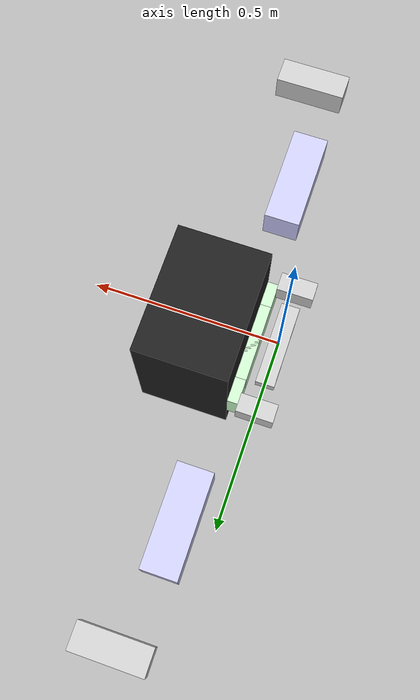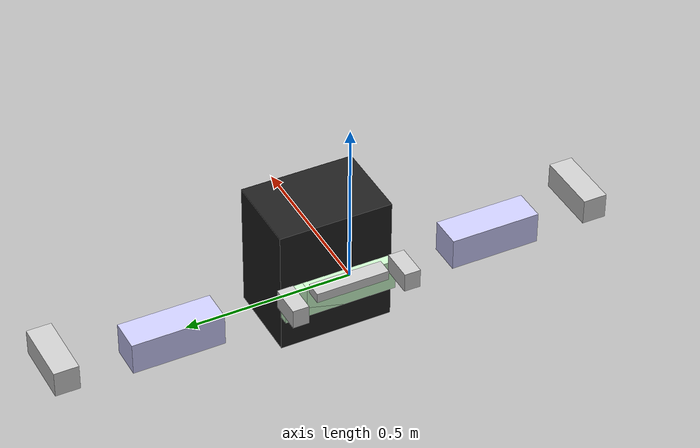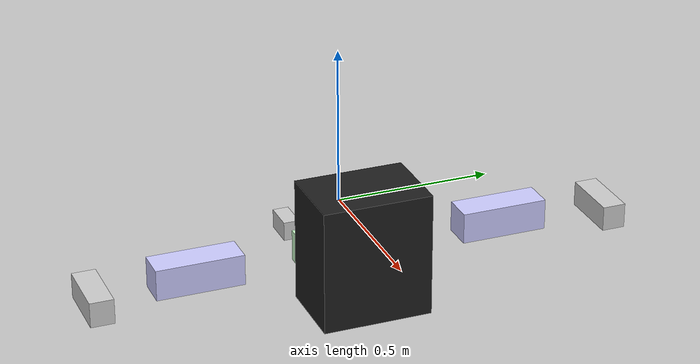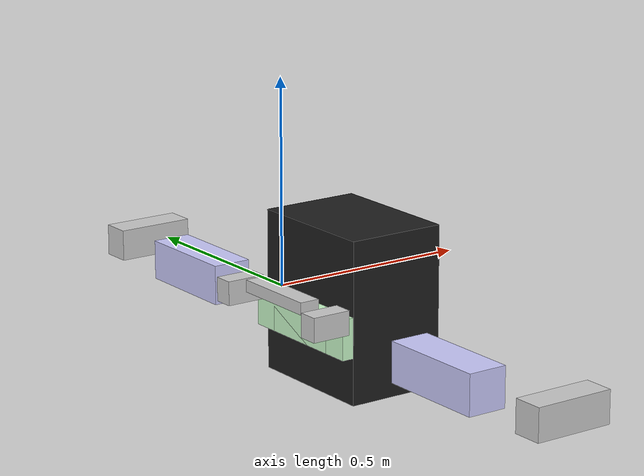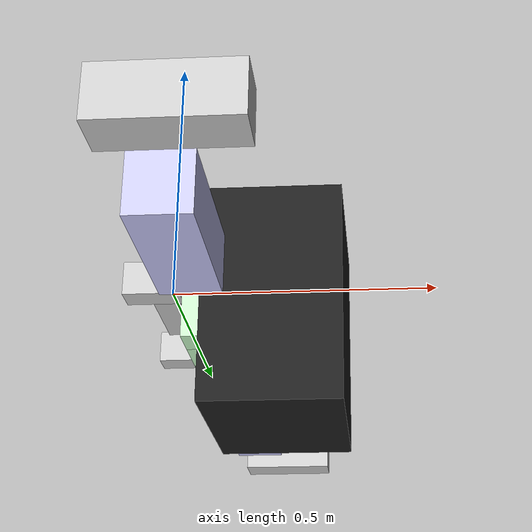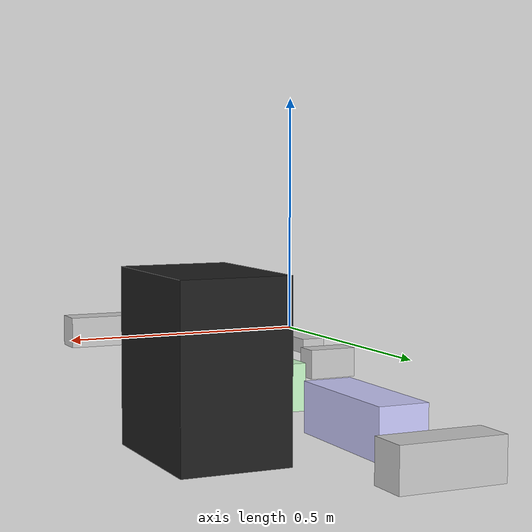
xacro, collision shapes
<?xml version="1.0"?>
<robot name="lower_limb_exoskeleton" xmlns:xacro="http://www.ros.org/wiki/xacro">

  <xacro:include filename="properties.xacro" />
  <xacro:include filename="macros.xacro" />
  <xacro:include filename="human_dummy.xacro" />

  <link name="world"/>

  <joint name="pole_to_waist" type="fixed">
    <parent link="world" />
    <child link="waist_link" />
    <origin xyz="0 0 0  " />
  </joint>

  <link name="human_waist_link">
    <visual>
      <origin xyz="0 0 ${-human_waist_h/2}" rpy="0 0 0" />
      <geometry>
        <box size="${human_waist_l} ${human_waist_w} ${human_waist_h}" />
      </geometry>
      <material name="black" />
    </visual>
    <collision>
      <origin xyz="0 0 ${-human_waist_h/2}" rpy="0 0 0" />
      <geometry>
        <box size="${human_waist_l} ${human_waist_w} ${human_waist_h}" />
      </geometry>
    </collision>

    <inertial>
      <origin xyz="0 0 ${-human_waist_h/2}" rpy="0 0 0" />
      <mass value="${human_waist_weight}" />
      <inertia
        ixx="${human_waist_weight / 12.0 * (human_waist_w**2 + human_waist_h**2)}"
        iyy="${human_waist_weight / 12.0 * (human_waist_l**2 + human_waist_h**2)}"
        izz="${human_waist_weight / 12.0 * (human_waist_l**2 + human_waist_w**2)}"
        ixy="0"
        ixz="0"
        iyz="0" />
    </inertial>

  </link>

  <joint name="human_waist_link_joint" type="fixed">
    <parent link="waist_link" />
    <child link="human_waist_link" />
    <origin xyz="${human_waist_l/2 + 0.08} 0 ${human_waist_h/3}" rpy="0 0 0" />
  </joint>
  <xacro:create_link3 name="waist_link" m="${waist_m}" l="${waist_l}" w="${waist_w/2}"
    h="${waist_h}" o_x="0" o_y="${waist_mesh_w/2 -0.015}" o_z="${-waist_h_offset}" o_r="0"
    o_p="${-PI}"
    o_yaw="${-PI}" mat="${waist_mat}" mesh_filename="${waist_mesh}" mirror="1" />

  <xacro:create_link3 name="l_pel_link" m="${pel_m}" l="${pel_l}" w="${pel_w}"
    h="${pel_h}" o_x="${pel_x_offset}" o_y="${pel_y_offset}"
    o_z="${-pel_h_offset}" o_r="0" o_p="0"
    o_yaw="0" mat="${pel_mat}" mesh_filename="${pel_mesh}" mirror="1" />
  <xacro:create_link3 name="l_thigh_link" m="${thigh_m}" l="${thigh_l}" w="${thigh_w}"
    h="${thigh_h}" o_x="${thigh_w}" o_y="${thigh_w/2}" o_z="${-thigh_l}" o_r="0" o_p="0"
    o_yaw="${PI}" mat="${thigh_mat}" mesh_filename="${thigh_mesh}" mirror="1" />
  <xacro:create_link3 name="l_shank_link" m="${shank_m}" l="${shank_l}" w="${shank_w}"
    h="${shank_h}" o_x="${shank_w}" o_y="${shank_w/2}" o_z="${-shank_l}" o_r="0" o_p="0"
    o_yaw="${PI}"
    mat="${shank_mat}" mesh_filename="${shank_mesh}" mirror="1" />

    <link name="l_foot_link">
      <collision>
        <origin xyz="${foot_h/2} 0 ${-foot_h}" rpy="0 0 0" />
        <geometry>
            <box size="${foot_h*2} ${foot_w} ${foot_l/2}" />
        </geometry>

      </collision>
      <visual>
              <origin xyz="${-foot_h} ${foot_w} ${-foot_l}" rpy="${PI/2} 0 ${PI/2 + 0}" />

          <geometry>
          <mesh filename="${foot_mesh}"
                      scale="${-1*mesh_scale} ${mesh_scale} ${mesh_scale}" />

          </geometry>
          <origin xyz="0 0 ${-foot_h/2}" rpy="0 0 0" />
          <material name="${foot_mat}" />
      </visual>
      <inertial>
          <origin xyz="0 0 ${-foot_h/2}" rpy="0 0 0" />
          <mass value="${foot_m}" />
          <inertia
              ixx="${foot_m / 12.0 * (foot_w*foot_w + foot_h*foot_h)}"
              ixy="0.0" ixz="0.0"
              iyy="${foot_m / 12.0 * (foot_l*foot_l + foot_h*foot_h)}"
              iyz="0.0"
              izz="${foot_m / 12.0 * (foot_l*foot_l + foot_w*foot_w)}" />
      </inertial>
  </link>

  <xacro:create_link3 name="r_pel_link" m="${pel_m}" l="${pel_l}" w="${pel_w}"
    h="${pel_h}" o_x="${pel_x_offset}" o_y="${pel_y_offset}"
    o_z="${-pel_h_offset}" o_r="0" o_p="0"
    o_yaw="0" mat="${pel_mat}" mesh_filename="${pel_mesh}" mirror="1" />
  <xacro:create_link3 name="r_thigh_link" m="${thigh_m}" l="${thigh_l}" w="${thigh_w}"
    h="${thigh_h}" o_x="${-thigh_w}" o_y="${-thigh_w/2}" o_z="${-thigh_l}" o_r="0" o_p="0"
    o_yaw="0" mat="${thigh_mat}" mesh_filename="${thigh_mesh}" mirror="1" />
  <xacro:create_link3 name="r_shank_link" m="${shank_m}" l="${shank_l}" w="${shank_w}"
    h="${shank_h}" o_x="${-shank_w}" o_y="${-shank_w/2}" o_z="${-shank_l}" o_r="0" o_p="0" o_yaw="0"
    mat="${shank_mat}" mesh_filename="${shank_mesh}" mirror="1" />

    <link name="r_foot_link">
      <collision>
          <origin xyz="${foot_h/2} 0 ${-foot_h}" rpy="0 0 0" />
          <geometry>
              <box size="${foot_h*2} ${foot_w} ${foot_l/2}" />
          </geometry>

      </collision>
      <visual>
              <origin xyz="${-foot_h} ${-foot_w} ${-foot_l}" rpy="${PI/2} 0 ${PI/2 + 0}" />

          <geometry>
          <mesh filename="${foot_mesh}"
                      scale="${1*mesh_scale} ${mesh_scale} ${mesh_scale}" />

          </geometry>
          <origin xyz="0 0 ${-foot_h/2}" rpy="0 0 0" />
          <material name="${foot_mat}" />
      </visual>
      <inertial>
          <origin xyz="0 0 ${-foot_h/2}" rpy="0 0 0" />
          <mass value="${foot_m}" />
          <inertia
              ixx="${foot_m / 12.0 * (foot_w*foot_w + foot_h*foot_h)}"
              ixy="0.0" ixz="0.0"
              iyy="${foot_m / 12.0 * (foot_l*foot_l + foot_h*foot_h)}"
              iyz="0.0"
              izz="${foot_m / 12.0 * (foot_l*foot_l + foot_w*foot_w)}" />
      </inertial>
  </link>

  <!-- JOINTS                                                  -->
  <xacro:macro name="create_leg" params="side origin_y o_roll hip_y_offset">

    <xacro:if value="${side == 'l'}">
      <xacro:property name="pel_lower_limit" value="${-PI}" />
      <xacro:property name="pel_upper_limit" value="${-PI/4}" />
    </xacro:if>

    <xacro:if value="${side == 'r'}">
      <xacro:property name="pel_lower_limit" value="${PI/4}" />
      <xacro:property name="pel_upper_limit" value="${PI}" />
    </xacro:if>

    <xacro:create_joint2 name="yr_${side}_pel_joint" parent="waist_link"
      child="${side}_pel_link" origin_x="0" origin_y="${origin_y}"
      origin_z="0" o_roll="0"
      o_pitch="0" o_yaw="${-PI}"
      axis_x="1" axis_y="0" axis_z="0"
      lower_limit="${pel_lower_limit}" upper_limit="${pel_upper_limit}" effort="10000" velocity="10.0" />

    <xacro:create_joint2 name="yr_${side}_hip_joint" parent="${side}_pel_link"
      child="${side}_thigh_link"
      origin_x="${-pel_l}" origin_y="${hip_y_offset}" origin_z="${-pel_h}" o_roll="${o_roll}"
      o_pitch="0" o_yaw="${-PI}"
      axis_x="0" axis_y="1" axis_z="0"
      lower_limit="${3*PI/4}" upper_limit="${-3*PI/4}" effort="10000" velocity="10.0" />

    <xacro:create_joint2 name="yr_${side}_kne_joint" parent="${side}_thigh_link"
      child="${side}_shank_link"
      origin_x="0" origin_y="0" origin_z="${-thigh_l}" o_roll="0" o_pitch="0" o_yaw="0"
      axis_x="0" axis_y="1" axis_z="0"
      lower_limit="${-PI/4}" upper_limit="${3*PI/2}" effort="10000" velocity="10.0" />
    <xacro:create_joint2 name="yr_${side}_ank_joint" parent="${side}_shank_link"
      child="${side}_foot_link"
      origin_x="0" origin_y="0" origin_z="${-shank_l}" o_roll="0" o_pitch="0" o_yaw="0"
      axis_x="0" axis_y="1" axis_z="0"
      lower_limit="${-PI/2}" upper_limit="${PI/2}" effort="10000" velocity="10.0" />
  </xacro:macro>

  <xacro:create_leg side="l" origin_y="${(abduction_motor_distance) / 2}" o_roll="${-PI/2}"
    hip_y_offset="${-pel_w/2}" />
  <xacro:create_leg side="r" origin_y="${-(abduction_motor_distance) / 2}" o_roll="${PI/2}"
    hip_y_offset="${pel_w/2}" />

  <ros2_control name="GazeboSystem" type="system">

    <hardware>
      <plugin>gazebo_ros2_control/GazeboSystem</plugin>
    </hardware>
    <joint name="yr_l_pel_joint">
      <command_interface name="position">
        <param name="min">-3.14</param>
        <param name="max">3.14</param>
      </command_interface>
      <command_interface name="effort">
        <param name="min">-1000</param>
        <param name="max">1000</param>
      </command_interface>

      <state_interface name="position">
        <param name="initial_value">${yr_l_pel_joint_val}</param>
      </state_interface>
      <state_interface name="velocity" />
      <state_interface name="effort" />
    </joint>

    <joint name="yr_l_hip_joint">
      <command_interface name="position">
        <param name="min">-3.14</param>
        <param name="max">3.14</param>
      </command_interface>

      <command_interface name="effort">
        <param name="min">-1000</param>
        <param name="max">1000</param>
      </command_interface>

      <state_interface name="position">
        <param name="initial_value">${yr_l_hip_joint_val}</param>
      </state_interface>
      <state_interface name="velocity" />
      <state_interface name="effort" />
    </joint>

    <joint name="yr_l_kne_joint">
      <command_interface name="position">
        <param name="min">-3.14</param>
        <param name="max">3.14</param>
      </command_interface>
      <command_interface name="effort">
        <param name="min">-1000</param>
        <param name="max">1000</param>
      </command_interface>
      <state_interface name="position">
        <param name="initial_value">${yr_l_kne_joint_val}</param>
      </state_interface>
      <state_interface name="velocity" />
      <state_interface name="effort" />
    </joint>

    <joint name="yr_l_ank_joint">
      <command_interface name="position">
        <param name="min">-3.14</param>
        <param name="max">3.14</param>
      </command_interface>
      <command_interface name="effort">
        <param name="min">-1000</param>
        <param name="max">1000</param>
      </command_interface>
      <state_interface name="position">
        <param name="initial_value">${yr_l_ank_joint_val}</param>
      </state_interface>
      <state_interface name="velocity" />
      <state_interface name="effort" />
    </joint>

    <joint name="yr_r_pel_joint">
      <command_interface name="position">
        <param name="min">-3.14</param>
        <param name="max">3.14</param>
      </command_interface>
      <command_interface name="effort">
        <param name="min">-1000</param>
        <param name="max">1000</param>
      </command_interface>
      <state_interface name="position">
        <param name="initial_value">${yr_r_pel_joint_val}</param>
      </state_interface>
      <state_interface name="velocity" />
      <state_interface name="effort" />
    </joint>

    <joint name="yr_r_hip_joint">
      <command_interface name="position">
        <param name="min">-3.14</param>
        <param name="max">3.14</param>
      </command_interface>
      <command_interface name="effort">
        <param name="min">-1000</param>
        <param name="max">1000</param>
      </command_interface>
      <state_interface name="position">
        <param name="initial_value">${yr_r_hip_joint_val}</param>
      </state_interface>
      <state_interface name="velocity" />
      <state_interface name="effort" />
    </joint>

    <joint name="yr_r_kne_joint">
      <command_interface name="position">
        <param name="min">-3.14</param>
        <param name="max">3.14</param>
      </command_interface>
      <command_interface name="effort">
        <param name="min">-1000</param>
        <param name="max">1000</param>
      </command_interface>
      <state_interface name="position">
        <param name="initial_value">${yr_r_kne_joint_val}</param>
      </state_interface>
      <state_interface name="velocity" />
      <state_interface name="effort" />
    </joint>

    <joint name="yr_r_ank_joint">
      <command_interface name="position">
        <param name="min">-3.14</param>
        <param name="max">3.14</param>
      </command_interface>
      <command_interface name="effort">
        <param name="min">-1000</param>
        <param name="max">1000</param>
      </command_interface>
      <state_interface name="position">
        <param name="initial_value">${yr_r_ank_joint_val}</param>
      </state_interface>
      <state_interface name="velocity" />
      <state_interface name="effort" />
    </joint>

  </ros2_control>

  <gazebo>
    <plugin name="gazebo_ros2_control" filename="libgazebo_ros2_control.so">
      <parameters>$(find yr_lle_sim)/config/control.yaml</parameters>
    </plugin>
  </gazebo>

  <gazebo reference="l_pel_link">
    <plugin name="gazebo_ros_force_system" filename="libgazebo_ros_force_system.so">
      <!-- Add plugin-specific parameters here -->
    </plugin>
  </gazebo>

  <!-- Use the macro to add IMU sensors to specific links -->
  <xacro:add_imu_sensor link_name="l_pel_link" joint_name="yr_l_pel_joint" />
  <xacro:add_imu_sensor link_name="l_thigh_link" joint_name="yr_l_hip_joint" />
  <xacro:add_imu_sensor link_name="l_shank_link" joint_name="yr_l_kne_joint"/>
  <xacro:add_imu_sensor link_name="l_foot_link" joint_name="yr_l_ank_joint"/>

  <xacro:add_imu_sensor link_name="r_pel_link" joint_name="yr_r_pel_joint"/>
  <xacro:add_imu_sensor link_name="r_thigh_link" joint_name="yr_r_hip_joint"/>
  <xacro:add_imu_sensor link_name="r_shank_link" joint_name="yr_r_kne_joint"/>
  <xacro:add_imu_sensor link_name="r_foot_link" joint_name="yr_r_ank_joint"/>

</robot>

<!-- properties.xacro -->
<robot name="lower_limb_exoskeleton" xmlns:xacro="http://www.ros.org/wiki/xacro">

    <xacro:property name="PI" value="3.1415926535897931" />
    <xacro:property name="alpha" value="1.0" />

    <material name="silver">
        <color rgba="0.8 0.8 0.8 ${alpha}" />
    </material>

    <material name="blue">
        <color rgba="0.8 1 0.8 ${alpha}" />
    </material>

    <material name="green">
        <color rgba="0.8 0.8 1 ${alpha}" />
    </material>

    <xacro:property name="abduction_motor_distance" value="0.35" />

    <xacro:property name="waist_m" value="2.0" />
    <xacro:property name="waist_l" value="0.05" />
    <xacro:property name="waist_h" value="0.05" />
    <xacro:property name="waist_mat" value="silver" />
    <xacro:property name="waist_mesh_w" value="0.45" />
    <xacro:property name="waist_w" value="${waist_mesh_w}" />
    <xacro:property name="waist_h_offset" value="0.062" />
    <xacro:property name="pel_joints_dist" value="0.4" />
    <xacro:property name="waist_mesh"
        value="file://$(find yr_lle_sim)/urdf/meshes_yr/waist_center.STL" />

    <xacro:property name="pel_m" value="1.0" />
    <xacro:property name="pel_l" value="0.1" />
    <xacro:property name="pel_w" value="0.05" />
    <xacro:property name="pel_h" value="0.1" />
    <xacro:property name="pel_mat" value="silver" />
    <xacro:property name="pel_x_offset" value="-0.09" />
    <xacro:property name="pel_y_offset" value="-0.028" />
    <xacro:property name="pel_h_offset" value="0.088" />
    <xacro:property name="pel_mesh"
        value="file://$(find yr_lle_sim)/urdf/meshes_yr/waist_corner_bracket.STL" />

    <xacro:property name="thigh_m" value="1.5" />
    <xacro:property name="thigh_l" value="0.468" />
    <xacro:property name="thigh_w" value="0.1" />
    <xacro:property name="thigh_h" value="0.1" />
    <xacro:property name="thigh_mat" value="blue" />

    <xacro:property name="shank_m" value="1.5" />
    <xacro:property name="shank_l" value="0.468" />
    <xacro:property name="shank_w" value="0.1" />
    <xacro:property name="shank_h" value="0.1" />
    <xacro:property name="shank_mat" value="green" />

    <xacro:property name="foot_m" value="1.0" />
    <xacro:property name="foot_l" value="0.15" />
    <xacro:property name="foot_w" value="0.08" />
    <xacro:property name="foot_h" value="0.1" />
    <xacro:property name="foot_mat" value="silver" />

    <xacro:property name="stand_base_width" value="0.5" />
    <xacro:property name="stand_base_depth" value="0.5" />
    <xacro:property name="stand_base_height" value="0.05" />
    <xacro:property name="pole_height" value="1.2" />
    <xacro:property name="pole_radius" value="0.02" />

    <xacro:property name="thigh_mesh" value="file://$(find yr_lle_sim)/urdf/meshes_yr/exo_thigh.STL" />
    <xacro:property name="shank_mesh" value="file://$(find yr_lle_sim)/urdf/meshes_yr/exo_shank.STL" />
    <xacro:property name="foot_mesh" value="file://$(find yr_lle_sim)/urdf/meshes_yr/exo_foot.STL" />

    <!-- Human Boday Paramters -->

    <xacro:property name="human_thigh_r" value="0.075" />
    <xacro:property name="human_shank_r" value="0.056" />
    <xacro:property name="human_waist_l" value="0.25" />
    <xacro:property name="human_waist_w" value="0.35" />
    <xacro:property name="human_waist_h" value="0.4" />

    <xacro:property name="human_weight" value="75" />
    <xacro:property name="human_waist_weight" value="${human_weight*0.842}" />
    <xacro:property name="human_thigh_weight" value="${human_weight*0.1}" />
    <xacro:property name="human_shank_weight" value="${human_weight*0.05}" />
    <xacro:property name="human_foot_weight" value="${human_weight*0.015}" />

    <xacro:property name="yr_l_pel_joint_val" value="${-PI/2}" />
    <xacro:property name="yr_l_hip_joint_val" value="${-PI/4}" />
    <xacro:property name="yr_l_kne_joint_val" value="${PI/2}" />
    <xacro:property name="yr_l_ank_joint_val" value="${-PI/4}" />

    <xacro:property name="yr_r_pel_joint_val" value="${PI/2}" />
    <xacro:property name="yr_r_hip_joint_val" value="${-PI/4}" />
    <xacro:property name="yr_r_kne_joint_val" value="${PI/2}" />
    <xacro:property name="yr_r_ank_joint_val" value="${-PI/4}" />

</robot>

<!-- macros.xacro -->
<robot name="lower_limb_exoskeleton" xmlns:xacro="http://www.ros.org/wiki/xacro">

    <!-- LINK                                                    -->
    <xacro:macro name="create_link" params="name m l w h mat">
        <link name="${name}">
            <collision>
                <origin xyz="0 0 ${-l/2}" rpy="0 0 0" />
                <geometry>
                    <box size="${l} ${w} ${h}" />
                </geometry>
            </collision>
            <visual>
                <origin xyz="0 0 ${-l/2}" rpy="0 0 0" />
                <geometry>
                    <box size="${h} ${w} ${l}" />
                </geometry>
                <material name="${mat}" />
            </visual>
            <inertial>
                <origin xyz="0 0 ${-h/2}" rpy="0 0 0" />
                <mass value="${m}" />
                <inertia
                    ixx="${m / 12.0 * (w*w + l*l)}"
                    ixy="0.0" ixz="0.0"
                    iyy="${m / 12.0 * (h*h + l*l)}"
                    iyz="0.0"
                    izz="${m / 12.0 * (h*h + w*w)}" />
            </inertial>
        </link>
    </xacro:macro>

    <xacro:property name="mesh_scale" value="0.001" />
    <xacro:arg name="use_mesh" default="false" />

    <!-- LINK2                                                   -->
    <xacro:macro name="create_link2"
        params="name m l w h o_x o_y o_z o_r o_p o_yaw mat mesh_filename mirror">
        <link name="${name}">
            <collision>

                <xacro:if value="${mesh_filename != ''}">
                    <origin xyz="${o_x} ${o_y} ${o_z}" rpy="${PI/2} 0 ${PI/2 + o_yaw}" />
                </xacro:if>
                <xacro:unless value="${mesh_filename != ''}">
                    <origin xyz="0 0 ${-l/2}" rpy="0 0 ${-PI}" />
                </xacro:unless>
                <geometry>
                    <xacro:if value="${mesh_filename != ''}">
                        <mesh filename="${mesh_filename}"
                            scale="${mirror*mesh_scale} ${mesh_scale} ${mesh_scale}" />
                    </xacro:if>
                    <xacro:unless value="${mesh_filename != ''}">
                        <box size="${h} ${w} ${l}" />
                    </xacro:unless>
                </geometry>
                <origin xyz="0 0 ${-l/2}" rpy="0 0 0" />
                <material name="${mat}" />
            </collision>
            <visual>

                <xacro:if value="${mesh_filename != ''}">
                    <origin xyz="${o_x} ${o_y} ${o_z}" rpy="${PI/2} 0 ${PI/2 + o_yaw}" />
                </xacro:if>
                <xacro:unless value="${mesh_filename != ''}">
                    <origin xyz="0 0 ${-l/2}" rpy="0 0 ${-PI}" />
                </xacro:unless>
                <geometry>
                    <xacro:if value="${mesh_filename != ''}">
                        <mesh filename="${mesh_filename}"
                            scale="${mirror*mesh_scale} ${mesh_scale} ${mesh_scale}" />
                    </xacro:if>
                    <xacro:unless value="${mesh_filename != ''}">
                        <box size="${h} ${w} ${l}" />
                    </xacro:unless>
                </geometry>
                <origin xyz="0 0 ${-l/2}" rpy="0 0 0" />
                <material name="${mat}" />
            </visual>
            <inertial>
                <origin xyz="0 0 ${-l/2}" rpy="0 0 0" />
                <mass value="${m}" />
                <inertia
                    ixx="${m / 12.0 * (w*w + l*l)}"
                    ixy="0.0" ixz="0.0"
                    iyy="${m / 12.0 * (h*h + l*l)}"
                    iyz="0.0"
                    izz="${m / 12.0 * (h*h + w*w)}" />
            </inertial>
        </link>
    </xacro:macro>

    <xacro:macro name="create_link3"
        params="name m l w h o_x o_y o_z o_r o_p o_yaw mat mesh_filename mirror">
        <link name="${name}">
            <collision>
                <origin xyz="0 0 ${-l/2}" rpy="0 0 0" />
                <geometry>
                    <box size="${h} ${w} ${l*0.6}" />
                </geometry>

            </collision>
            <visual>

                <xacro:if value="${mesh_filename != ''}">
                    <origin xyz="${o_x} ${o_y} ${o_z}" rpy="${PI/2} 0 ${PI/2 + o_yaw}" />
                </xacro:if>
                <xacro:unless value="${mesh_filename != ''}">
                    <origin xyz="0 0 ${-l/2}" rpy="0 0 ${-PI}" />
                </xacro:unless>
                <geometry>
                    <xacro:if value="${mesh_filename != ''}">
                        <mesh filename="${mesh_filename}"
                            scale="${mirror*mesh_scale} ${mesh_scale} ${mesh_scale}" />
                    </xacro:if>
                    <xacro:unless value="${mesh_filename != ''}">
                        <box size="${h} ${w} ${l}" />
                    </xacro:unless>
                </geometry>
                <origin xyz="0 0 ${-l/2}" rpy="0 0 0" />
                <material name="${mat}" />
            </visual>
            <inertial>
                <origin xyz="0 0 ${-l/2}" rpy="0 0 0" />
                <mass value="${m}" />
                <inertia
                    ixx="${m / 12.0 * (w*w + l*l)}"
                    ixy="0.0" ixz="0.0"
                    iyy="${m / 12.0 * (h*h + l*l)}"
                    iyz="0.0"
                    izz="${m / 12.0 * (h*h + w*w)}" />
            </inertial>
        </link>
    </xacro:macro>

    <!-- JOINTS                                                  -->
    <xacro:macro name="create_joint"
        params="name parent child origin_x origin_y origin_z o_roll o_pitch o_yaw axis_x axis_y axis_z lower_limit upper_limit effort velocity">
        <joint name="${name}" type="revolute">
            <parent link="${parent}" />
            <child link="${child}" />
            <origin xyz="${origin_x} ${origin_y} ${origin_z}" rpy="${o_roll} ${o_pitch} ${o_yaw}" />
            <axis xyz="${axis_x} ${axis_y} ${axis_z}" />
            <limit lower="${lower_limit}" upper="${upper_limit}" effort="${effort}"
                velocity="${velocity}" />
        </joint>
    </xacro:macro>

    <xacro:macro name="create_joint2"
        params="name parent child origin_x origin_y origin_z o_roll o_pitch o_yaw axis_x axis_y axis_z lower_limit upper_limit effort velocity">
        <joint name="${name}" type="continuous">
            <parent link="${parent}" />
            <child link="${child}" />
            <origin xyz="${origin_x} ${origin_y} ${origin_z}" rpy="${o_roll} ${o_pitch} ${o_yaw}" />
            <axis xyz="${axis_x} ${axis_y} ${axis_z}" />
        </joint>
    </xacro:macro>

    <!-- TRANSMISSION                                            -->
    <xacro:macro name="create_transmission" params="joint_name">
        <transmission name="${joint_name}_transmission">
            <type>transmission_interface/SimpleTransmission</type>
            <joint name="${joint_name}">
                <hardwareInterface>hardware_interface/PositionJointInterface</hardwareInterface>
            </joint>
            <actuator name="${joint_name}_motor">
                <hardwareInterface>hardware_interface/PositionJointInterface</hardwareInterface>
                <mechanicalReduction>1</mechanicalReduction>
            </actuator>
        </transmission>
    </xacro:macro>

    <xacro:macro name="set_gazebo_material" params="link_name material">
        <gazebo reference="${link_name}">
            <material>${material}</material>
        </gazebo>
    </xacro:macro>

    <xacro:macro name="define_gazebo_material" params="link_name r g b a">
        <gazebo reference="${link_name}">
            <mu1>3</mu1>
            <mu2>3</mu2>
            <kp  value="1000000.0"/>
            <kd  value="1000.0"/>
            <self_collide>0</self_collide>
            <material>Gazebo/White</material>
            <visual>
                <material>
                    <ambient>${r} ${g} ${b} ${a}</ambient>
                    <diffuse>${r} ${g} ${b} ${a}</diffuse>
                    <specular>0.1 0.1 0.1 1</specular>
                    <emissive>0 0 0 0</emissive>
                </material>
            </visual>

        </gazebo>
    </xacro:macro>

    <xacro:macro name="add_imu_sensor" params="link_name joint_name">
        <gazebo reference="${link_name}">
            <sensor type="imu" name="${link_name}_imu_sensor">
                <pose>0 0 0 0 0 0</pose>
                <always_on>true</always_on>
                <update_rate>50</update_rate>
                <imu>
                    <angular_velocity>
                        <x>0.0</x>
                        <y>0.0</y>
                        <z>0.0</z>
                    </angular_velocity>
                    <linear_acceleration>
                        <x>0.0</x>
                        <y>0.0</y>
                        <z>0.0</z>
                    </linear_acceleration>
                </imu>
                <plugin name="imu" filename="libgazebo_ros_imu_sensor.so">
                    <ros>
                        <!-- Output topic name -->
                        <namespace>${joint_name}</namespace>
                        <argument>imu/out:=imu</argument>
                    </ros>
                    <!-- Frame ID for the IMU data -->
                    <frameName>${link_name}</frameName>
                </plugin>
            </sensor>
        </gazebo>
    </xacro:macro>

</robot>
